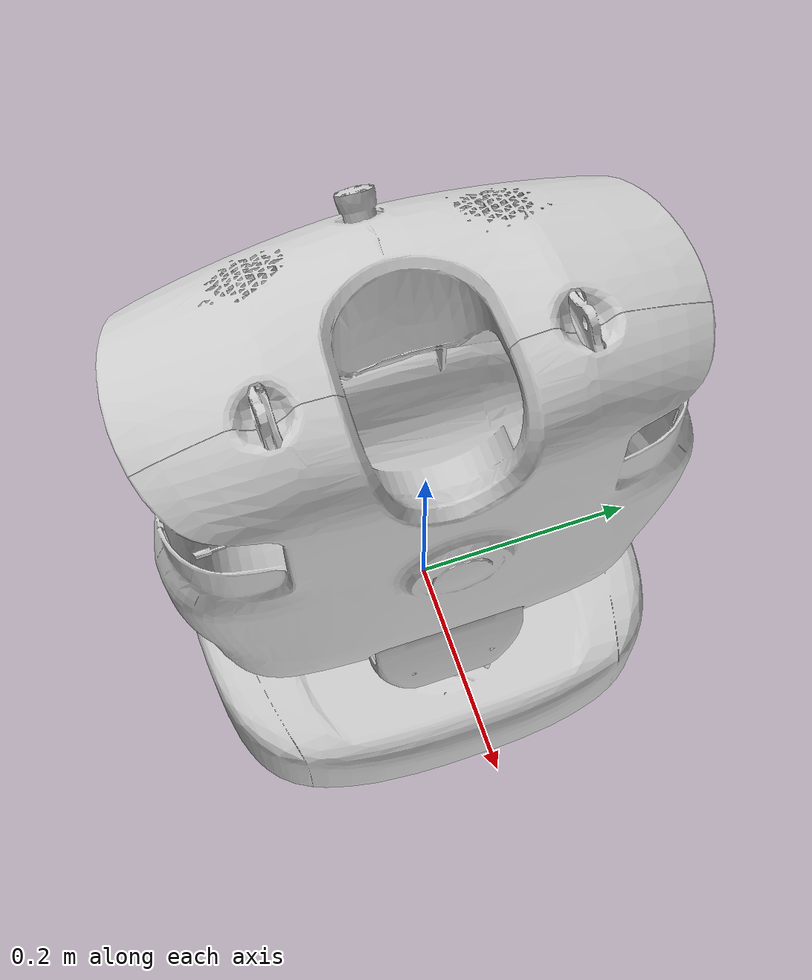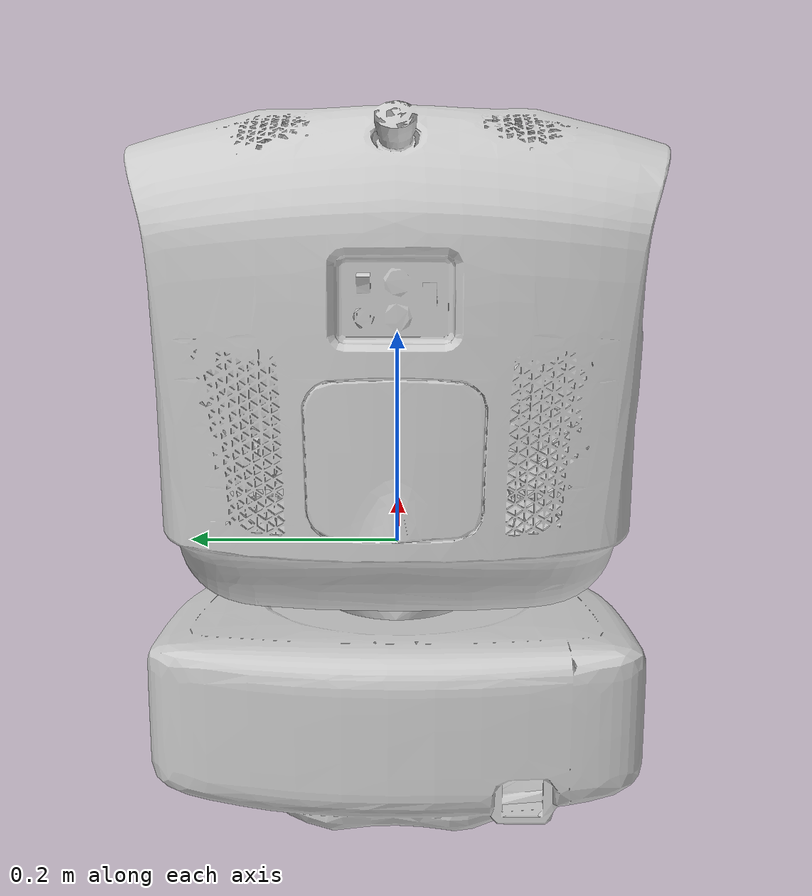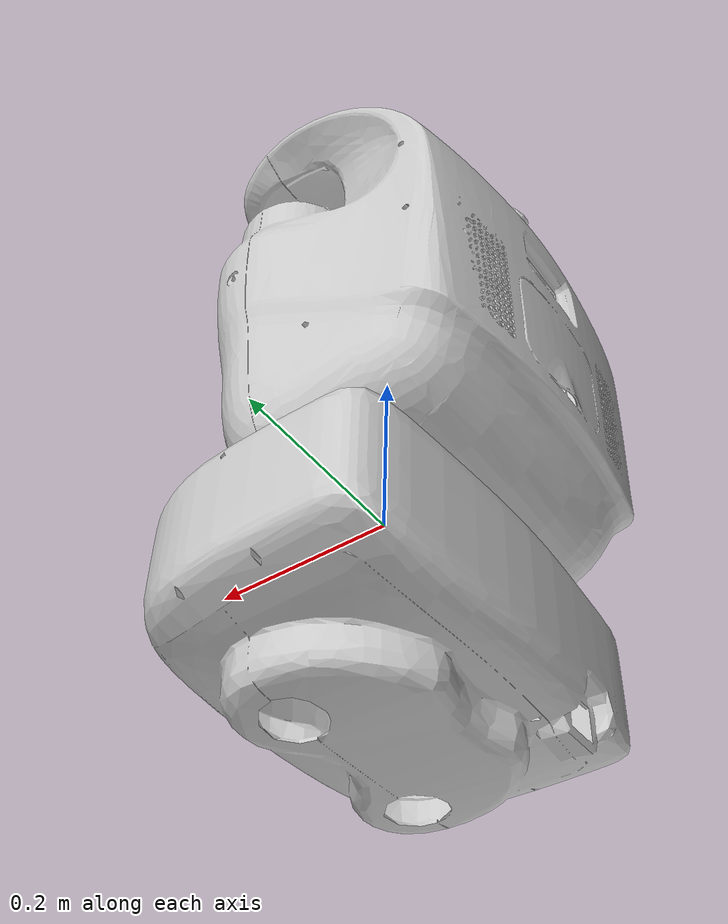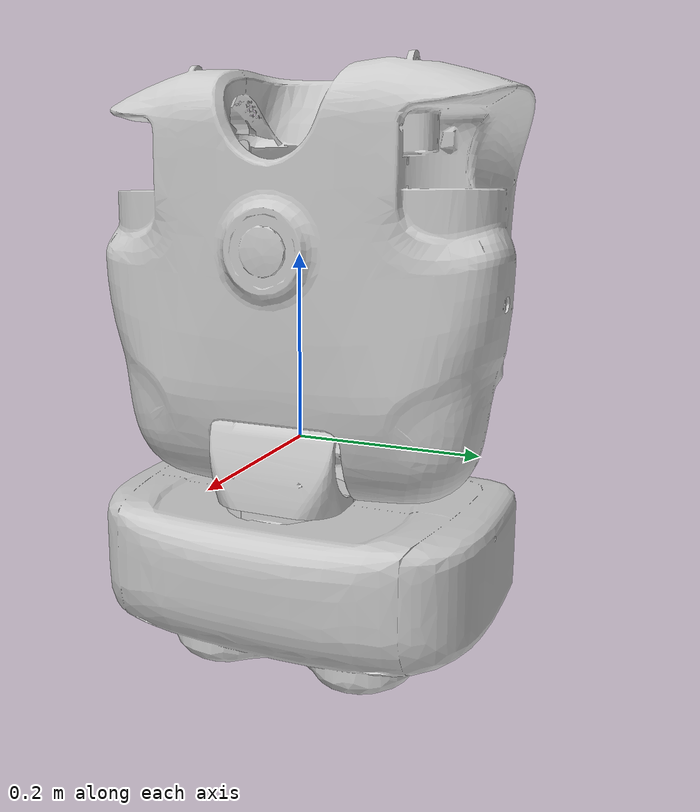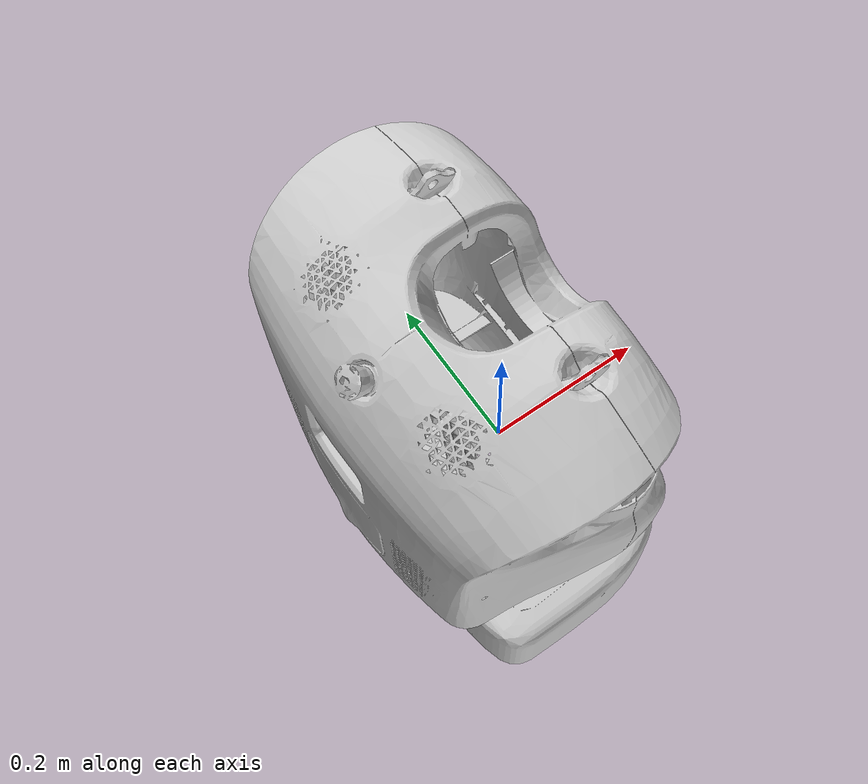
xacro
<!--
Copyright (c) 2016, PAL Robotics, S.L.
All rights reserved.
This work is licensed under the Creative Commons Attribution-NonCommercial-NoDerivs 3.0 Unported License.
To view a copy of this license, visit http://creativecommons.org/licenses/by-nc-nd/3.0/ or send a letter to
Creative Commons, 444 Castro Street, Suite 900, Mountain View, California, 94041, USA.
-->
<?xml version="1.0"?>
<robot name="tor" xmlns:xacro="http://www.ros.org/wiki/xacro"
        xmlns:sensor="http://playerstage.sourceforge.net/gazebo/xmlschema/#sensor"
        xmlns:controller="http://playerstage.sourceforge.net/gazebo/xmlschema/#controller"
        xmlns:interface="http://playerstage.sourceforge.net/gazebo/xmlschema/#interface">

  <xacro:include filename="$(find tor_description)/urdf/torso/torso.urdf.xacro" />

  <xacro:tor_torso name="torso" />

  <!-- Generic simulator_gazebo plugins -->
  <xacro:include filename="$(find tor_description)/gazebo/gazebo.urdf.xacro" />
  <!-- Materials for visualization -->
  <xacro:include filename="$(find tor_description)/urdf/materials.urdf.xacro" />

</robot>

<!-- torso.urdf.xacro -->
<robot xmlns:xacro="http://ros.org/wiki/xacro">

  <!--File includes-->
  <xacro:include filename="$(find tor_description)/urdf/deg_to_rad.xacro" />
  <xacro:include filename="$(find tor_description)/urdf/torso/torso.transmission.xacro" />

 <!--Constant parameters-->
  <xacro:property name="torso_max_vel"  value="5.4" />
  <xacro:property name="torso_max_effort"  value="78.0" />
  <xacro:property name="torso_eps"      value="0.02" />

  <xacro:macro name="tor_torso" params="name">
    <!--        TORSO_2         -->
    <link name="${name}_2_link">
      <inertial>
        <origin xyz="-0.04551 -0.00053 0.16386" rpy="0.00000 0.00000 0.00000"/>
        <mass value="17.55011"/>
        <inertia ixx="0.37376900000" ixy="0.00063900000" ixz="0.01219600000"
                 iyy="0.24790200000" iyz="0.00000700000"
                 izz="0.28140400000"/>
      </inertial>

      <visual>
        <origin xyz="0 0 0" rpy="0 0 0" />
        <geometry>
          <mesh filename="package://tor_description/meshes/torso/torso_2.STL" scale="1 1 1"/>
        </geometry>
        <material name="LightGrey" />
      </visual>

      <collision>
        <origin xyz="0 0 0" rpy="0 0 0" />
        <geometry>
          <mesh filename="package://tor_description/meshes/torso/torso_2_collision.STL" scale="1 1 1"/>
        </geometry>
      </collision>
    </link>

    <!--        TORSO_1         -->
    <link name="${name}_1_link">
      <inertial>
        <origin xyz="0.00013 -0.00001 -0.01306" rpy="0.00000 0.00000 0.00000"/>
        <mass value="3.02433"/>
        <inertia ixx="0.00759400000" ixy="0.00000100000" ixz="-0.00004800000"
                 iyy="0.00429200000" iyz="-0.00000100000"
                 izz="0.00749700000"/>
      </inertial>
      <visual>
        <origin xyz="0 0 0" rpy="0 0 0" />
        <geometry>
          <mesh filename="package://tor_description/meshes/torso/torso_1.STL" scale="1 1 1"/>
        </geometry>
        <material name="LightGrey" />
      </visual>
      <collision>
        <origin xyz="0 0 0" rpy="0 0 0" />
        <geometry>
          <mesh filename="package://tor_description/meshes/torso/torso_1.STL" scale="1 1 1"/>
        </geometry>
      </collision>
    </link>

    <joint name="${name}_1_joint" type="revolute">
      <parent link="${name}_2_link"/>
      <child link="${name}_1_link"/>
      <origin xyz="0.02000 0.00000 0.0"
              rpy="${0.00000 * deg_to_rad} ${0.00000 * deg_to_rad} ${0.00000 * deg_to_rad}"/>
      <axis xyz="0 1 0" />
      <limit lower="${-75.00000 * deg_to_rad}" upper="${75.00000 * deg_to_rad}"
             effort="${torso_max_effort}" velocity="${torso_max_vel}"/>
      <dynamics damping="1.0" friction="1.0"/>

    </joint>

    <!--        BASE_LINK       -->
    <link name="base_link">
      <inertial>
        <origin xyz="-0.06071 0.00861 0.06368" rpy="0.00000 0.00000 0.00000"/>
        <mass value="13.34865"/>
        <inertia ixx="0.06652900000" ixy="-0.00035700000" ixz="0.00027600000"
                 iyy="0.03746500000" iyz="-0.00125400000"
                 izz="0.07895100000"/>
      </inertial>

      <visual>
        <origin xyz="0 0 0" rpy="0 0 0" />
        <geometry>
          <mesh filename="package://tor_description/meshes/torso/base_link.STL" scale="1 1 1"/>
        </geometry>
        <material name="LightGrey" />
      </visual>

      <collision>
        <origin xyz="0 0 0" rpy="0 0 0" />
        <geometry>
          <mesh filename="package://tor_description/meshes/torso/base_link_collision.STL" scale="1 1 1"/>
        </geometry>
      </collision>
    </link>

    <joint name="${name}_2_joint" type="revolute">
      <parent link="${name}_1_link"/>
      <child link="base_link"/>
      <origin xyz="0.0 0.0 -0.2012"
              rpy="${0.00000 * deg_to_rad} ${0.00000 * deg_to_rad} ${0.00000 * deg_to_rad}"/>
      <axis xyz="0 0 1" />
      <limit lower="${-75.00000 * deg_to_rad}" upper="${75.00000 * deg_to_rad}"
             effort="${torso_max_effort}" velocity="${torso_max_vel}" />
      <dynamics friction="1.0" damping="1.0"/>

    </joint>

  <gazebo reference="${name}_1_link">
     <mu1>0.9</mu1>
     <mu2>0.9</mu2>
   </gazebo>
   <gazebo reference="${name}_2_link">
     <mu1>0.9</mu1>
     <mu2>0.9</mu2>
   </gazebo>

   <gazebo reference="${name}_1_joint">
      <implicitSpringDamper>1</implicitSpringDamper>
   </gazebo>
   <gazebo reference="${name}_2_joint">
     <implicitSpringDamper>1</implicitSpringDamper>
     <provideFeedback>1</provideFeedback>
   </gazebo>

    <!-- extensions -->
    <xacro:tor_torso_differential_transmission name="${name}" number1="1" number2="2"
                                                act_reduction1="1.0" act_reduction2="1.0"
                                                jnt_reduction1="1.0" jnt_reduction2="1.0" />
  </xacro:macro>

</robot>

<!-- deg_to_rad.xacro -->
<robot xmlns:xacro="http://ros.org/wiki/xacro">

    <property name="deg_to_rad" value="0.01745329251994329577" />

</robot>
